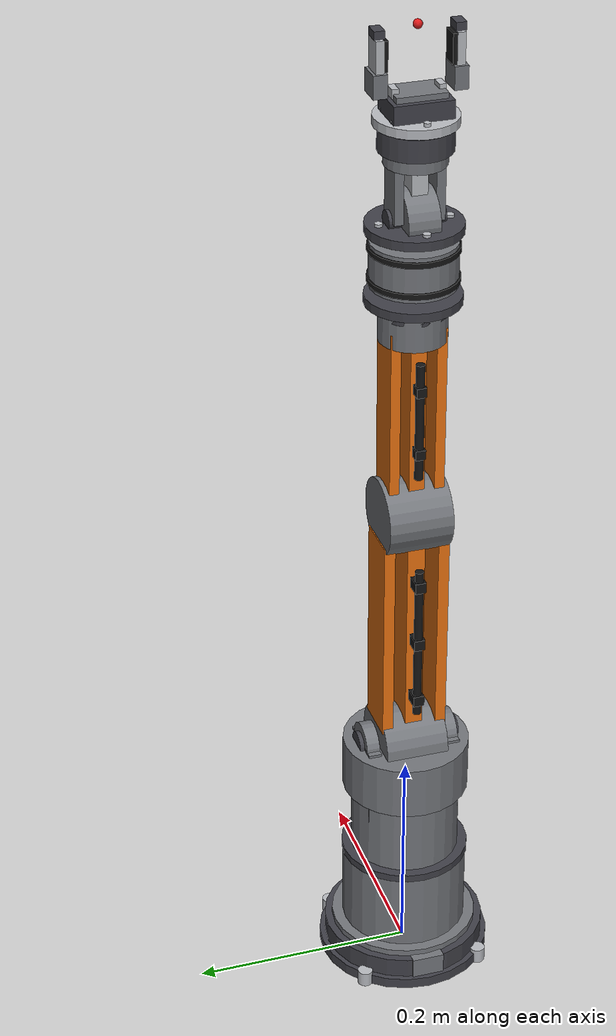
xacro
<?xml version="1.0"?>
<robot xmlns:xacro="http://www.ros.org/wiki/xacro" name="arm6">

  <xacro:include filename="$(find arm_description)/urdf/inertial_macros.xacro"/>
  <xacro:include filename="$(find arm_description)/urdf/arm6.ros2_control.xacro"/>

  <xacro:property name="base_r"  value="0.075"/>
  <xacro:property name="base_h"  value="0.035"/>
  <xacro:property name="l1"      value="0.200"/>
  <xacro:property name="r1"      value="0.055"/>
  <xacro:property name="l2"      value="0.240"/>
  <xacro:property name="w2"      value="0.060"/>
  <xacro:property name="l3"      value="0.200"/>
  <xacro:property name="w3"      value="0.050"/>
  <xacro:property name="l4"      value="0.080"/>
  <xacro:property name="r4"      value="0.038"/>
  <xacro:property name="l5"      value="0.060"/>
  <xacro:property name="w5"      value="0.045"/>
  <xacro:property name="l6"      value="0.030"/>
  <xacro:property name="r6"      value="0.032"/>

  <!-- 夹爪 -->
  <xacro:property name="gb_x"    value="0.045"/>   <!-- 夹爪座厚度(x) -->
  <xacro:property name="gb_y"    value="0.060"/>   <!-- 开合方向总宽(y) -->
  <xacro:property name="gb_h"    value="0.020"/>
  <xacro:property name="f_x"     value="0.020"/>   <!-- 指片 x -->
  <xacro:property name="f_y"     value="0.008"/>   <!-- 指片厚度(沿开合方向) -->
  <xacro:property name="f_h"     value="0.055"/>   <!-- 指片高度 -->
  <xacro:property name="f_stroke" value="0.040"/>  <!-- 单指行程 = 开口增量 -->

  <xacro:property name="yoke_t"   value="0.012"/>              <!-- 颊板厚 -->
  <xacro:property name="fit_gap"  value="0.0015"/>             <!-- 颊板内面 ↔ 臂段毂 的缝 -->
  <xacro:property name="yoke_y"   value="${w2/2 + fit_gap + yoke_t/2}"/>  <!-- 颊板中心 y -->
  <xacro:property name="hub2_len" value="${2*(w2/2-0.001)}"/>           <!-- link2 俯仰毂长(沿 y)，端面离颊板留 2.5 mm 缝 -->

  <!-- ===================== 材料（rviz 显示用，不影响物理） ================= -->
  <material name="dark_grey"><color rgba="0.25 0.25 0.28 1.0"/></material>
  <material name="aluminium"><color rgba="0.72 0.73 0.75 1.0"/></material>
  <material name="orange"><color rgba="0.92 0.45 0.06 1.0"/></material>
  <material name="black_rubber"><color rgba="0.08 0.08 0.08 1.0"/></material>
  <material name="tip_red"><color rgba="0.85 0.10 0.10 1.0"/></material>
  <!-- 壳体灰：介于 aluminium 与 dark_grey 之间，用来把"铸件外壳"和"加工面/法兰"分开。
       真机一眼能认出关节，靠的就是这种分色，而不是靠形状。 -->
  <material name="steel"><color rgba="0.45 0.46 0.48 1.0"/></material>

  <!-- 沿 link 自身 z 的圆柱：滚转轴零件（腰、腕滚、法兰） -->
  <xacro:macro name="vz_cyl" params="r l z x:=0 y:=0 mat:=steel">
    <visual>
      <origin xyz="${x} ${y} ${z}" rpy="0 0 0"/>
      <geometry><cylinder radius="${r}" length="${l}"/></geometry>
      <material name="${mat}"/>
    </visual>
  </xacro:macro>

  <!-- 沿 link 自身 y 的圆柱：俯仰轴零件（肩、肘、腕俯仰的毂与轴帽）。
       URDF 的 cylinder 轴恒为自身 +z，所以绕 x 转 -90° 把 +z 转到 +y。 -->
  <xacro:macro name="vy_cyl" params="r l z x:=0 y:=0 mat:=steel">
    <visual>
      <origin xyz="${x} ${y} ${z}" rpy="${-pi/2} 0 0"/>
      <geometry><cylinder radius="${r}" length="${l}"/></geometry>
      <material name="${mat}"/>
    </visual>
  </xacro:macro>

  <xacro:macro name="v_box" params="sx sy sz x y z mat:=steel">
    <visual>
      <origin xyz="${x} ${y} ${z}" rpy="0 0 0"/>
      <geometry><box size="${sx} ${sy} ${sz}"/></geometry>
      <material name="${mat}"/>
    </visual>
  </xacro:macro>

  <!-- 一圈螺栓头：调用方逐颗给角度（xacro 没有循环，但有 cos/sin） -->
  <xacro:macro name="v_bolt" params="ang rad z r:=0.003 h:=0.005 mat:=aluminium">
    <visual>
      <origin xyz="${rad*cos(ang)} ${rad*sin(ang)} ${z}" rpy="0 0 0"/>
      <geometry><cylinder radius="${r}" length="${h}"/></geometry>
      <material name="${mat}"/>
    </visual>
  </xacro:macro>

  <!-- 一指 = 指座(靠掌心) + 指骨 + 内侧橡胶垫 + 指尖。
       inner = 指向"另一根手指"那一侧的单位符号（finger1 在 +y 故 inner=-1）。
       ★ 四件加起来必须正好填满 [-f_h/2, +f_h/2]：指尖平面就是 tool0 的高度
         （gb_h + f_h），多出一毫米都会让"规划到的位置"和"看着夹住的位置"错开。 -->
  <xacro:macro name="finger_visual" params="inner">
    <xacro:v_box sx="${f_x+0.002}" sy="${f_y+0.004}" sz="0.020" x="0" y="0" z="${-f_h/2+0.010}" mat="steel"/>
    <xacro:v_box sx="${f_x-0.002}" sy="${f_y-0.001}" sz="0.030" x="0" y="0" z="0.005" mat="aluminium"/>
    <xacro:v_box sx="0.016" sy="0.006" sz="0.026" x="0" y="${inner*0.004}" z="0.006" mat="black_rubber"/>
    <xacro:v_box sx="0.014" sy="${f_y+0.001}" sz="0.007" x="0" y="0" z="${f_h/2-0.0035}" mat="dark_grey"/>
  </xacro:macro>

  <link name="world"/>

  <joint name="world_joint" type="fixed">
    <parent link="world"/>
    <child link="base_link"/>
    <origin xyz="0 0 0" rpy="0 0 0"/>
  </joint>

  <!-- ============================ base_link ============================== -->
  <link name="base_link">
    <!-- 底座：底板法兰 + 主体 + 分色顶盖 + 4 颗地脚螺栓 +  rear 接线盒。
         顶盖直径刻意比主体小 7 mm，做出"铸件上面再压一片加工盖"的台阶感。 -->
    <xacro:vz_cyl r="${base_r+0.005}" l="0.010"  z="0.005"   mat="dark_grey"/>
    <xacro:vz_cyl r="${base_r}"       l="0.019"  z="0.0195"  mat="dark_grey"/>
    <xacro:vz_cyl r="0.068"           l="0.006"  z="0.032"   mat="steel"/>
    <xacro:vz_cyl r="0.007"           l="0.014"  z="0.007" x="0.056"  y="0.056"  mat="aluminium"/>
    <xacro:vz_cyl r="0.007"           l="0.014"  z="0.007" x="-0.056" y="0.056"  mat="aluminium"/>
    <xacro:vz_cyl r="0.007"           l="0.014"  z="0.007" x="-0.056" y="-0.056" mat="aluminium"/>
    <xacro:vz_cyl r="0.007"           l="0.014"  z="0.007" x="0.056"  y="-0.056" mat="aluminium"/>
    <xacro:v_box  sx="0.010" sy="0.030" sz="0.020" x="-0.070" y="0" z="0.0195" mat="steel"/>
    <collision>
      <origin xyz="0 0 ${base_h/2}" rpy="0 0 0"/>
      <geometry><cylinder radius="${base_r}" length="${base_h}"/></geometry>
    </collision>
    <xacro:cylinder_inertial radius="${base_r}" length="${base_h}" mass="1.80" com_z="${base_h/2}"/>
  </link>

  <!-- ============================ joint1 / link1 ==========================
       腰部回转。effort/velocity 是 MoveIt 时间参数化（TOTG）的硬约束，
       没有它们规划器只能给几何路径、给不出时间轴，execute() 会直接报错。 -->
  <joint name="joint1" type="revolute">
    <parent link="base_link"/>
    <child link="link1"/>
    <origin xyz="0 0 ${base_h}" rpy="0 0 0"/>
    <axis xyz="0 0 1"/>
    <limit lower="${-pi*160/180}" upper="${pi*160/180}" velocity="3.14" effort="60.0"/>
    <dynamics damping="0.30" friction="0.10"/>
  </joint>
  <link name="link1">
    <!-- 腰段：三段阶梯壳体（比 collision 粗 3~4 mm，做出铸件的鼓形）+ 一道分色环带，
         顶部两片**颊板**夹住 joint2 的 y 轴 —— 俯仰关节一律是"两块板夹一个轴"，
         少了这两片板，肩关节看着就还是一根柱子顶一个方块。 -->
    <xacro:vz_cyl r="${r1+0.003}" l="0.075" z="${0.0375}"      mat="steel"/>
    <xacro:vz_cyl r="${r1+0.004}" l="0.007" z="${0.0785}"      mat="dark_grey"/>
    <xacro:vz_cyl r="0.050"       l="0.068" z="${0.116}"       mat="steel"/>
    <xacro:vz_cyl r="${r1+0.003}" l="0.050" z="${l1-0.025}"    mat="steel"/>
    <xacro:v_box  sx="0.050" sy="0.012" sz="0.075" x="0" y="${ yoke_y}"  z="${l1-0.035}" mat="steel"/>
    <xacro:v_box  sx="0.050" sy="0.012" sz="0.075" x="0" y="${-yoke_y}"  z="${l1-0.035}" mat="steel"/>
    <xacro:vy_cyl r="0.020" l="0.012" y="${ yoke_y}"  z="${l1}" mat="steel"/>
    <xacro:vy_cyl r="0.020" l="0.012" y="${-yoke_y}"  z="${l1}" mat="steel"/>
    <!-- 轴端螺栓帽放在**颊板外侧面**（link1 的 collision 是 r=55 的圆柱，装得下），
         不放臂段上：臂段 collision 半宽只有 30 mm，压一颗轴帽就侧向外扩 13 mm，
         那是"看着穿模、规划说不碰"的典型。 -->
    <xacro:vy_cyl r="0.012" l="0.004" y="${ yoke_y+yoke_t/2+0.002}"  z="${l1}" mat="dark_grey"/>
    <xacro:vy_cyl r="0.012" l="0.004" y="${-(yoke_y+yoke_t/2+0.002)}" z="${l1}" mat="dark_grey"/>
    <xacro:v_box  sx="0.002" sy="0.024" sz="0.012" x="${r1+0.002}" y="0" z="0.055" mat="orange"/>
    <collision>
      <origin xyz="0 0 ${l1/2}" rpy="0 0 0"/>
      <geometry><cylinder radius="${r1}" length="${l1}"/></geometry>
    </collision>
    <xacro:cylinder_inertial radius="${r1}" length="${l1}" mass="0.95" com_z="${l1/2}"/>
  </link>

  <!-- ============================ joint2 / link2 ==========================
       肩关节。这里 rpy 不变换，轴就是 link1 的 +y（= 世界 y，因为 joint1 只绕 z）。 -->
  <joint name="joint2" type="revolute">
    <parent link="link1"/>
    <child link="link2"/>
    <origin xyz="0 0 ${l1}" rpy="0 0 0"/>
    <axis xyz="0 1 0"/>
    <limit lower="${-pi*100/180}" upper="${pi*100/180}" velocity="3.14" effort="60.0"/>
    <dynamics damping="0.25" friction="0.08"/>
  </joint>
  <link name="link2">
    <!-- 大臂：实心方盒 → "薄腹板 + 两侧盖板 + 两端俯仰毂"。
         侧盖板外表面正好落在 collision 半宽上（±30 mm），毂的半径只比 collision
         多 5 mm，所以整段看起来比原来的方盒"瘦"、但关节处鼓出来 —— 真机就是这个比例。 -->
    <xacro:v_box  sx="${w2-0.020}" sy="0.016"  sz="${l2-0.050}" x="0" y="0" z="${l2/2}" mat="orange"/>
    <xacro:v_box  sx="${w2-0.016}" sy="0.010"  sz="${l2-0.044}" x="0" y="${ w2/2-0.005}" z="${l2/2}" mat="orange"/>
    <xacro:v_box  sx="${w2-0.016}" sy="0.010"  sz="${l2-0.044}" x="0" y="${-(w2/2-0.005)}" z="${l2/2}" mat="orange"/>
    <xacro:vy_cyl r="${w2/2+0.005}" l="${hub2_len}" z="0"    mat="steel"/>
    <xacro:vy_cyl r="${w2/2+0.005}" l="${hub2_len}" z="${l2}" mat="steel"/>
    <!-- 后侧走线：一根波纹管 + 三道线夹。走线永远在"背向工作空间"那一侧(-x)。 -->
    <xacro:vz_cyl r="0.004" l="${l2-0.090}" x="${-(w2/2-0.001)}" y="0" z="${l2/2}" mat="black_rubber"/>
    <xacro:v_box  sx="0.014" sy="0.010" sz="0.010" x="${-(w2/2-0.003)}" y="0" z="0.060" mat="black_rubber"/>
    <xacro:v_box  sx="0.014" sy="0.010" sz="0.010" x="${-(w2/2-0.003)}" y="0" z="0.120" mat="black_rubber"/>
    <xacro:v_box  sx="0.014" sy="0.010" sz="0.010" x="${-(w2/2-0.003)}" y="0" z="0.180" mat="black_rubber"/>
    <collision>
      <origin xyz="0 0 ${l2/2}" rpy="0 0 0"/>
      <geometry><box size="${w2} ${w2} ${l2}"/></geometry>
    </collision>
    <xacro:box_inertial x="${w2}" y="${w2}" z="${l2}" mass="0.70" com_z="${l2/2}"/>
  </link>

  <!-- ============================ joint3 / link3 ========================== -->
  <joint name="joint3" type="revolute">
    <parent link="link2"/>
    <child link="link3"/>
    <origin xyz="0 0 ${l2}" rpy="0 0 0"/>
    <axis xyz="0 1 0"/>
    <limit lower="${-pi*120/180}" upper="${pi*120/180}" velocity="3.14" effort="30.0"/>
    <dynamics damping="0.20" friction="0.06"/>
  </joint>
  <link name="link3">
    <!-- 小臂：与大臂同一套语汇（腹板 + 侧盖板 + 毂），但整体缩一档。
         远端 joint4 是**滚**轴（沿 z），所以那里画的是鼓而不是圆盘。 -->
    <xacro:v_box  sx="${w3-0.016}" sy="0.014"  sz="${l3-0.040}" x="0" y="0" z="${l3/2}" mat="orange"/>
    <xacro:v_box  sx="${w3-0.014}" sy="0.009"  sz="${l3-0.034}" x="0" y="${ w3/2-0.0045}" z="${l3/2}" mat="orange"/>
    <xacro:v_box  sx="${w3-0.014}" sy="0.009"  sz="${l3-0.034}" x="0" y="${-(w3/2-0.0045)}" z="${l3/2}" mat="orange"/>
    <!-- 肘关节的圆盘由 link2 远端那个毂画（同轴、半径更大、更宽，画在这儿会被整个包住
         看不见）—— 同轴的两个 link 只留一个画毂，这条对 joint3 成立，对 joint2 不成立
         （那边是"颊板夹毂"，两件都看得见）。 -->
    <xacro:vz_cyl r="${w3/2+0.005}" l="0.030" z="${l3-0.015}" mat="steel"/>
    <xacro:vz_cyl r="${w3/2+0.005}" l="0.006" z="${l3-0.003}" mat="dark_grey"/>
    <xacro:vz_cyl r="0.004" l="${l3-0.090}" x="${-(w3/2-0.003)}" y="0" z="${l3/2}" mat="black_rubber"/>
    <xacro:v_box  sx="0.012" sy="0.009" sz="0.009" x="${-(w3/2-0.004)}" y="0" z="0.070" mat="black_rubber"/>
    <xacro:v_box  sx="0.012" sy="0.009" sz="0.009" x="${-(w3/2-0.004)}" y="0" z="0.130" mat="black_rubber"/>
    <collision>
      <origin xyz="0 0 ${l3/2}" rpy="0 0 0"/>
      <geometry><box size="${w3} ${w3} ${l3}"/></geometry>
    </collision>
    <xacro:box_inertial x="${w3}" y="${w3}" z="${l3}" mass="0.45" com_z="${l3/2}"/>
  </link>

  <!-- ============================ joint4 / link4 : 腕滚 =================== -->
  <joint name="joint4" type="revolute">
    <parent link="link3"/>
    <child link="link4"/>
    <origin xyz="0 0 ${l3}" rpy="0 0 0"/>
    <axis xyz="0 0 1"/>
    <limit lower="${-pi*170/180}" upper="${pi*170/180}" velocity="4.19" effort="15.0"/>
    <dynamics damping="0.15" friction="0.04"/>
  </joint>
  <link name="link4">
    <!-- 腕滚段：中段鼓 + 两端法兰 + 两道防滑环 + 远端 4 颗螺栓。
         滚轴关节的"真"来自**沿轴叠的盘**，不是来自圆盘侧面。 -->
    <xacro:vz_cyl r="${r4}"          l="0.040" z="${l4/2}"      mat="steel"/>
    <xacro:vz_cyl r="${r4+0.004}"    l="0.008" z="0.008"        mat="dark_grey"/>
    <xacro:vz_cyl r="${r4+0.004}"    l="0.008" z="${l4-0.008}"  mat="dark_grey"/>
    <xacro:vz_cyl r="${r4+0.0015}"   l="0.005" z="0.026"        mat="black_rubber"/>
    <xacro:vz_cyl r="${r4+0.0015}"   l="0.005" z="0.054"        mat="black_rubber"/>
    <xacro:v_bolt ang="${pi*0/4}" rad="${r4-0.007}" z="${l4-0.004}" r="0.0035" h="0.005"/>
    <xacro:v_bolt ang="${pi*2/4}" rad="${r4-0.007}" z="${l4-0.004}" r="0.0035" h="0.005"/>
    <xacro:v_bolt ang="${pi*4/4}" rad="${r4-0.007}" z="${l4-0.004}" r="0.0035" h="0.005"/>
    <xacro:v_bolt ang="${pi*6/4}" rad="${r4-0.007}" z="${l4-0.004}" r="0.0035" h="0.005"/>
    <collision>
      <origin xyz="0 0 ${l4/2}" rpy="0 0 0"/>
      <geometry><cylinder radius="${r4}" length="${l4}"/></geometry>
    </collision>
    <xacro:cylinder_inertial radius="${r4}" length="${l4}" mass="0.25" com_z="${l4/2}"/>
  </link>

  <!-- ============================ joint5 / link5 : 腕俯仰 ================ -->
  <joint name="joint5" type="revolute">
    <parent link="link4"/>
    <child link="link5"/>
    <origin xyz="0 0 ${l4}" rpy="0 0 0"/>
    <axis xyz="0 1 0"/>
    <limit lower="${-pi*120/180}" upper="${pi*120/180}" velocity="4.19" effort="15.0"/>
    <dynamics damping="0.12" friction="0.03"/>
  </joint>
  <link name="link5">
    <!-- 腕俯仰：小一号的"颊板夹毂"（和肩关节同一语汇，只是尺寸到腕级）+ 远端滚鼓。 -->
    <xacro:vy_cyl r="${w5/2+0.0045}" l="0.028" z="0" mat="steel"/>
    <xacro:v_box  sx="0.026" sy="0.008" sz="0.050" x="0" y="${ w5/2-0.0045}" z="0.025" mat="steel"/>
    <xacro:v_box  sx="0.026" sy="0.008" sz="0.050" x="0" y="${-(w5/2-0.0045)}" z="0.025" mat="steel"/>
    <xacro:v_box  sx="0.024" sy="0.014" sz="0.048" x="0" y="0" z="0.036" mat="aluminium"/>
    <xacro:vy_cyl r="0.009" l="0.050" z="0" mat="dark_grey"/>
    <xacro:vz_cyl r="${w5/2+0.0045}" l="0.016" z="${l5-0.004}" mat="steel"/>
    <collision>
      <origin xyz="0 0 ${l5/2}" rpy="0 0 0"/>
      <geometry><box size="${w5} ${w5} ${l5}"/></geometry>
    </collision>
    <xacro:box_inertial x="${w5}" y="${w5}" z="${l5}" mass="0.18" com_z="${l5/2}"/>
  </link>

  <!-- ============================ joint6 / link6 : 腕摆 =================== -->
  <joint name="joint6" type="revolute">
    <parent link="link5"/>
    <child link="link6"/>
    <origin xyz="0 0 ${l5}" rpy="0 0 0"/>
    <axis xyz="0 0 1"/>
    <limit lower="${-pi*170/180}" upper="${pi*170/180}" velocity="4.19" effort="8.0"/>
    <dynamics damping="0.10" friction="0.02"/>
  </joint>
  <link name="link6">
    <!-- 腕摆 + 输出法兰：真机法兰上那圈螺栓是"这是机器人"最强的视觉信号，
         所以 6 颗逐颗给角度（xacro 没有循环，但有 cos/sin）。 -->
    <xacro:vz_cyl r="${r6}"          l="0.020" z="0.010"        mat="dark_grey"/>
    <xacro:vz_cyl r="${r6+0.004}"    l="0.008" z="${l6-0.004}"  mat="aluminium"/>
    <xacro:v_bolt ang="0"          rad="${r6-0.005}" z="${l6+0.001}" r="0.003" h="0.004"/>
    <xacro:v_bolt ang="${pi/3}"     rad="${r6-0.005}" z="${l6+0.001}" r="0.003" h="0.004"/>
    <xacro:v_bolt ang="${2*pi/3}"   rad="${r6-0.005}" z="${l6+0.001}" r="0.003" h="0.004"/>
    <xacro:v_bolt ang="${pi}"       rad="${r6-0.005}" z="${l6+0.001}" r="0.003" h="0.004"/>
    <xacro:v_bolt ang="${4*pi/3}"   rad="${r6-0.005}" z="${l6+0.001}" r="0.003" h="0.004"/>
    <xacro:v_bolt ang="${5*pi/3}"   rad="${r6-0.005}" z="${l6+0.001}" r="0.003" h="0.004"/>
    <xacro:vz_cyl r="0.008"          l="0.005" z="${l6+0.0015}"  mat="black_rubber"/>
    <collision>
      <origin xyz="0 0 ${l6/2}" rpy="0 0 0"/>
      <geometry><cylinder radius="${r6}" length="${l6}"/></geometry>
    </collision>
    <xacro:cylinder_inertial radius="${r6}" length="${l6}" mass="0.12" com_z="${l6/2}"/>
  </link>

  <!-- ====================== 夹爪（fixed 座 + 2 个 prismatic 指） ========== -->
  <joint name="gripper_mount" type="fixed">
    <parent link="link6"/>
    <child link="gripper_base"/>
    <origin xyz="0 0 ${l6}" rpy="0 0 0"/>
  </joint>
  <link name="gripper_base">
    <!-- 掌心：一块板 + 一片顶盖 + 两道指导轨。导轨伸到 collision 上方 6 mm，
         落在两指之间的空档里（那里只有 tool0 这个纯坐标系），不影响抓取判定。 -->
    <xacro:v_box sx="${gb_x-0.005}" sy="${gb_y-0.008}" sz="0.016" x="0" y="0" z="0.008" mat="dark_grey"/>
    <xacro:v_box sx="0.030" sy="0.044" sz="0.005" x="0" y="0" z="0.0185" mat="steel"/>
    <xacro:v_box sx="0.012" sy="0.006" sz="0.008" x="0" y="${ gb_y/2-0.010}" z="0.021" mat="aluminium"/>
    <xacro:v_box sx="0.012" sy="0.006" sz="0.008" x="0" y="${-(gb_y/2-0.010)}" z="0.021" mat="aluminium"/>
    <collision>
      <origin xyz="0 0 ${gb_h/2}" rpy="0 0 0"/>
      <geometry><box size="${gb_x} ${gb_y} ${gb_h}"/></geometry>
    </collision>
    <xacro:box_inertial x="${gb_x}" y="${gb_y}" z="${gb_h}" mass="0.10" com_z="${gb_h/2}"/>
  </link>

  <!-- 指片原点放在**指片几何中心**，所以惯量 com_z=0；开合方向用轴符号区分，
       两个关节的 limit 都是 [0, f_stroke]，正值一律表示"张开" —— 这样
       SRDF 的 group_state 和 JTC 的目标值读起来不会左右相反。 -->
  <joint name="finger1_joint" type="prismatic">
    <parent link="gripper_base"/>
    <child link="finger1_link"/>
    <origin xyz="0 ${gb_y/2 + f_y/2} ${gb_h + f_h/2}" rpy="0 0 0"/>
    <axis xyz="0 1 0"/>
    <limit lower="0.0" upper="${f_stroke}" velocity="0.10" effort="20.0"/>
    <dynamics damping="0.50" friction="0.10"/>
  </joint>
  <link name="finger1_link">
    <xacro:finger_visual inner="-1"/>
    <collision>
      <geometry><box size="${f_x} ${f_y} ${f_h}"/></geometry>
    </collision>
    <xacro:box_inertial x="${f_x}" y="${f_y}" z="${f_h}" mass="0.045"/>
  </link>

  <joint name="finger2_joint" type="prismatic">
    <parent link="gripper_base"/>
    <child link="finger2_link"/>
    <origin xyz="0 ${-(gb_y/2 + f_y/2)} ${gb_h + f_h/2}" rpy="0 0 0"/>
    <axis xyz="0 -1 0"/>
    <limit lower="0.0" upper="${f_stroke}" velocity="0.10" effort="20.0"/>
    <dynamics damping="0.50" friction="0.10"/>
  </joint>
  <link name="finger2_link">
    <xacro:finger_visual inner="1"/>
    <collision>
      <geometry><box size="${f_x} ${f_y} ${f_h}"/></geometry>
    </collision>
    <xacro:box_inertial x="${f_x}" y="${f_y}" z="${f_h}" mass="0.045"/>
  </link>

  <joint name="tool0_joint" type="fixed">
    <parent link="gripper_base"/>
    <child link="tool0"/>
    <origin xyz="0 0 ${gb_h + f_h}" rpy="0 0 0"/>
  </joint>
  <link name="tool0">
    <visual>
      <geometry><sphere radius="0.004"/></geometry>
      <material name="tip_red"/>
    </visual>
    <!-- tool0 是纯坐标系，故意不给 collision：给了就会在 SRDF 里多出一堆
         "小球与指片相碰"的假阳性，还得逐条 disable。 -->
    <inertial>
      <origin xyz="0 0 0" rpy="0 0 0"/>
      <mass value="0.001"/>
      <inertia ixx="1e-7" ixy="0" ixz="0" iyy="1e-7" iyz="0" izz="1e-7"/>
    </inertial>
  </link>

  <!-- ros2_control 声明：8 个可控关节（6 臂 + 2 指），mock 硬件 -->
  <xacro:arm6_ros2_control/>

</robot>

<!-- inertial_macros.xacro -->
<robot xmlns:xacro="http://www.ros.org/wiki/xacro" name="inertial_macros">

  <!-- 长方体：边长 x,y,z，质量 mass，质心在 link 原点上方 com_z 处 -->
  <xacro:macro name="box_inertial" params="x y z mass com_z:=0.0">
    <inertial>
      <origin xyz="0.0 0.0 ${com_z}" rpy="0 0 0"/>
      <mass value="${mass}"/>
      <!-- 平行轴定理：I_origin = I_com + m*d^2，d 只在 z 方向，
           所以 Ixx/Iyy 各加 m*d^2，Izz 不变（d 与 z 轴平行）。 -->
      <inertia ixx="${mass/12.0*(y*y + z*z) + mass*com_z*com_z}" ixy="0.0" ixz="0.0"
               iyy="${mass/12.0*(x*x + z*z) + mass*com_z*com_z}" iyz="0.0"
               izz="${mass/12.0*(x*x + y*y)}"/>
    </inertial>
  </xacro:macro>

  <!-- 圆柱体：轴沿 link 自身 z 轴，几何中心在 com_z -->
  <xacro:macro name="cylinder_inertial" params="radius length mass com_z:=0.0">
    <inertial>
      <origin xyz="0.0 0.0 ${com_z}" rpy="0 0 0"/>
      <mass value="${mass}"/>
      <inertia ixx="${mass*(3.0*radius*radius + length*length)/12.0 + mass*com_z*com_z}" ixy="0.0" ixz="0.0"
               iyy="${mass*(3.0*radius*radius + length*length)/12.0 + mass*com_z*com_z}" iyz="0.0"
               izz="${mass*radius*radius/2.0}"/>
    </inertial>
  </xacro:macro>

  <!-- 球：只用于末端示教点/工具法兰的配重近似 -->
  <xacro:macro name="sphere_inertial" params="radius mass com_z:=0.0">
    <inertial>
      <origin xyz="0.0 0.0 ${com_z}" rpy="0 0 0"/>
      <mass value="${mass}"/>
      <inertia ixx="${0.4*mass*radius*radius + mass*com_z*com_z}" ixy="0.0" ixz="0.0"
               iyy="${0.4*mass*radius*radius + mass*com_z*com_z}" iyz="0.0"
               izz="${0.4*mass*radius*radius}"/>
    </inertial>
  </xacro:macro>

</robot>
